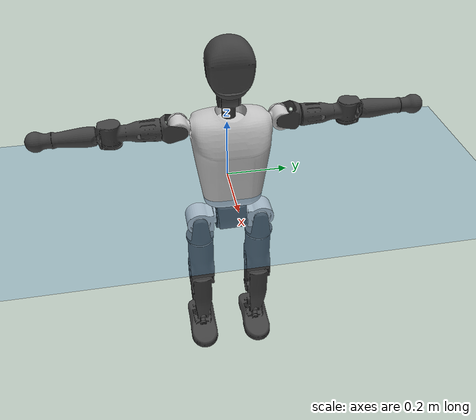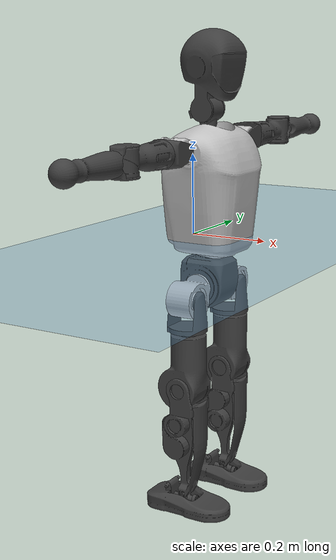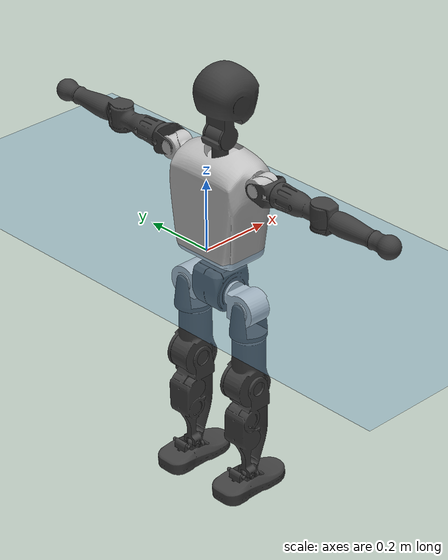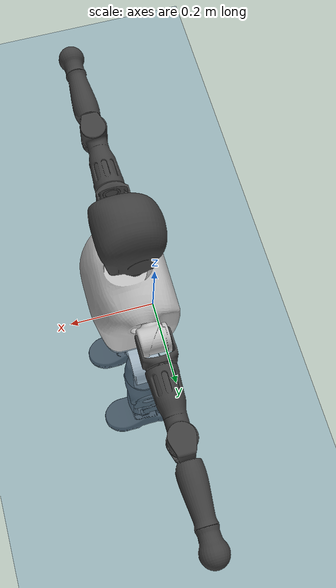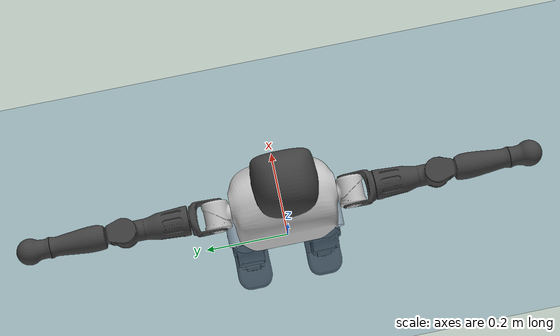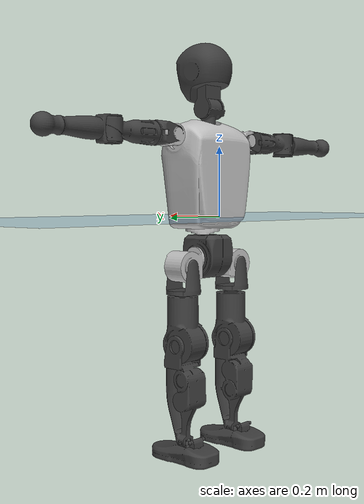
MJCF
<mujoco model="T1">
  <compiler angle="radian" assetdir="assets" balanceinertia="true" inertiafromgeom="false"/>

  <option timestep="0.005" density="1.2" viscosity="2e-05"/>

  <size nkey="1"/>

  <visual>
    <quality shadowsize="8192"/>
    <map shadowclip="0.5"/>
  </visual>

  <default>
    <default class="/">
      <joint armature="0.01" damping="0.01" frictionloss="0.1"/>
      <geom contype="0" conaffinity="0" group="1" solref="-1000 -80"/>
      <site size="0.01 0.005 0.005" group="5"/>
      <general forcelimited="true" biastype="affine" gainprm="25" biasprm="0 -25 -0.6"/>
      <default class="t1">
        <geom rgba="0.25 0.25 0.25 1"/>
        <default class="visual">
          <geom type="mesh" group="2"/>
        </default>
        <default class="collision">
          <geom group="3"/>
        </default>
        <default class="foot">
          <geom size="0.1115 0.05 0.015" type="box" condim="6" group="4" priority="1" solimp="0.015 1 0.015"/>
        </default>
        <default class="reward_collision_sphere">
          <geom group="5" rgba="1 0 0 1"/>
        </default>
      </default>
    </default>
  </default>

  <asset>
    <texture type="skybox" colorspace="auto" name="//unnamed_texture_0" builtin="gradient" rgb1="0.95 0.95 0.95" rgb2="0.95 0.95 0.95" width="100" height="600"/>
    <texture type="2d" colorspace="auto" name="texplane" builtin="checker" rgb1="0.345 0.575 0.748" rgb2="0.345 0.575 0.748" markrgb="1 1 1" width="512" height="512"/>
    <material name="MatPlane" class="/" texture="texplane" texuniform="true" texrepeat="2 2" specular="0.9"/>
    <mesh name="Trunk" class="/" file="Trunk.stl"/>
    <mesh name="H1" class="/" file="H1.stl"/>
    <mesh name="H2" class="/" file="H2.stl"/>
    <mesh name="AL1" class="/" file="AL1.stl"/>
    <mesh name="AL2" class="/" file="AL2.stl"/>
    <mesh name="AL3" class="/" file="AL3.stl"/>
    <mesh name="left_hand_link" class="/" file="left_hand_link.stl"/>
    <mesh name="AR1" class="/" file="AR1.stl"/>
    <mesh name="AR2" class="/" file="AR2.stl"/>
    <mesh name="AR3" class="/" file="AR3.stl"/>
    <mesh name="right_hand_link" class="/" file="right_hand_link.stl"/>
    <mesh name="Waist" class="/" file="Waist.stl"/>
    <mesh name="Hip_Pitch_Left" class="/" file="Hip_Pitch_Left.stl"/>
    <mesh name="Hip_Roll_Left" class="/" file="Hip_Roll_Left.stl"/>
    <mesh name="Hip_Yaw_Left" class="/" file="Hip_Yaw_Left.stl"/>
    <mesh name="Shank_Left" class="/" file="Shank_Left.stl"/>
    <mesh name="Ankle_Cross_Left" class="/" file="Ankle_Cross_Left.stl"/>
    <mesh name="left_foot_link" class="/" file="left_foot_link.stl"/>
    <mesh name="Hip_Pitch_Right" class="/" file="Hip_Pitch_Right.stl"/>
    <mesh name="Hip_Roll_Right" class="/" file="Hip_Roll_Right.stl"/>
    <mesh name="Hip_Yaw_Right" class="/" file="Hip_Yaw_Right.stl"/>
    <mesh name="Shank_Right" class="/" file="Shank_Right.stl"/>
    <mesh name="Ankle_Cross_Right" class="/" file="Ankle_Cross_Right.stl"/>
    <mesh name="right_foot_link" class="/" file="right_foot_link.stl"/>
  </asset>

  <worldbody>
    <geom name="floor" class="/" size="100 100 0.125" type="plane" group="0" material="MatPlane"/>
    <light name="toplight_shadow" class="/" pos="0 0 5" dir="0.0990148 0.0990148 -0.990148" type="directional" ambient="0.04 0.04 0.04" diffuse="0.55 0.55 0.55" specular="0.12 0.12 0.12"/>
    <light name="toplight_fill" class="/" pos="0 0 5" dir="0.0990148 0.0990148 -0.990148" type="directional" castshadow="false" ambient="0.04 0.04 0.04" diffuse="0.3 0.3 0.3" specular="0.08 0.08 0.08"/>
    <body name="trunk" childclass="t1" pos="0.0025677 0.000110545 -0.000430685" quat="1 0.000303406 -0.000257842 0.000176766">
      <inertial pos="0.038816 -0.000634122 0.106732" quat="0.999965 0.00216091 -0.00799424 -0.000879397" mass="9.24717" diaginertia="0.0173409 0.071897 0.0656512"/>
      <joint name="//unnamed_joint_0" type="free" armature="0" damping="0" frictionloss="0"/>
      <geom name="//unnamed_geom_1" class="visual" rgba="0.76 0.76 0.76 1" mesh="Trunk"/>
      <geom name="//unnamed_geom_2" class="collision" size="0.068297 0.0910627 0.136594" pos="0.0427279 0 0.123936" type="box"/>
      <geom name="//unnamed_geom_3" class="reward_collision_sphere" size="0.104722" pos="0.0427279 0 0.10328"/>
      <geom name="//unnamed_geom_4" class="reward_collision_sphere" size="0.0136594" pos="0.0427279 0.0838908 0"/>
      <geom name="//unnamed_geom_5" class="reward_collision_sphere" size="0.0136594" pos="0.0427279 -0.0838908 0"/>
      <geom name="//unnamed_geom_6" class="reward_collision_sphere" size="0.0136594" pos="0.0427279 0.105604 0.185904"/>
      <geom name="//unnamed_geom_7" class="reward_collision_sphere" size="0.0136594" pos="0.0427279 -0.105604 0.185904"/>
      <site name="imu" pos="-0.012389 -0.00662765 0.0137102" size="0.00910627"/>
      <camera name="track" pos="0 -1.9739 0" quat="0.707107 0.707107 0 0" mode="trackcom"/>
      <camera name="ego_camera" pos="0.08688 0 0.433775" quat="-0.5 -0.5 0.5 0.5"/>
      <body name="H1" pos="0.0422932 -0.00259554 0.248776" quat="1 -6.28965e-05 2.14296e-05 1.49914e-05">
        <inertial pos="-0.00339683 -0.00220044 0.0575473" quat="0.763749 -0.0206647 -0.00782772 0.645136" mass="0.345338" diaginertia="4.39901e-05 0.000202527 0.000174234"/>
        <joint name="AAHead_yaw" pos="0 0 0" axis="0.00874331 -0.0100997 0.999911" range="-1.56612 1.58011" armature="0.0101971" damping="0.00626808" frictionloss="0.100595"/>
        <geom name="//unnamed_geom_8" class="visual" mesh="H1"/>
        <body name="H2" pos="-0.00056509 -0.000411974 0.0634817" quat="0.999999 0.00112715 0.000708285 0.000400958">
          <inertial pos="0.00416986 -0.00111051 0.101534" quat="0.988712 0.104589 -0.0760338 -0.0756919" mass="0.493015" diaginertia="0.000367745 0.00181317 0.00207381"/>
          <joint name="Head_pitch" pos="0 0 0" axis="0.000538761 -1 -0.000453914" range="-1.22528 0.352392" armature="0.0101977" damping="0.00516905" frictionloss="0.0895393"/>
          <geom name="//unnamed_geom_9" class="visual" mesh="H2"/>
          <geom name="//unnamed_geom_10" class="collision" size="0.0728501" pos="0.00712131 0 0.113608"/>
          <geom name="//unnamed_geom_11" class="reward_collision_sphere" size="0.0819564" pos="0.0142426 0 0.10328"/>
        </body>
      </body>
      <body name="AL1" pos="0.0439362 0.10791 0.228808" quat="1 7.60971e-05 0.000475814 1.90637e-05">
        <inertial pos="-0.00262374 0.0468251 -0.00276832" quat="0.504442 0.494774 -0.503997 0.496713" mass="0.419996" diaginertia="0.000264429 0.00127688 0.000351731"/>
        <joint name="Left_Shoulder_Pitch" pos="0 0 0" axis="-0.00307032 0.999924 0.0119539" stiffness="0.0140451" range="-3.27577 1.2163" armature="0.0101982" damping="0.0105734" frictionloss="0.0789487"/>
        <geom name="//unnamed_geom_12" class="visual" rgba="0.76 0.76 0.76 1" mesh="AL1"/>
        <body name="AL2" pos="-0.000324918 0.049831 0.00280757" quat="1 -0.000204304 -0.000220805 0.000597723">
          <inertial pos="0.00260582 0.0376937 0.00183744" quat="0.488035 0.511762 -0.487769 0.511863" mass="0.120327" diaginertia="7.84421e-05 0.00034268 0.000207727"/>
          <joint name="Left_Shoulder_Roll" pos="0 0 0" axis="-0.999996 0.00200924 0.00174651" range="-1.52083 1.68402" armature="0.00898896" damping="0.0172835" frictionloss="0.0957891"/>
          <geom name="//unnamed_geom_13" class="visual" mesh="AL2"/>
          <body name="AL3" pos="0.00293375 0.059904 -0.000864579" quat="0.999999 0.000616226 -0.00122266 -0.000138587">
            <inertial pos="-0.000595096 0.0836253 0.00272296" quat="0.710344 0.703738 -0.0127504 0.00136703" mass="0.779234" diaginertia="0.00243762 0.0119283 0.000729379"/>
            <joint name="Left_Elbow_Pitch" pos="0 0 0" axis="-0.00590413 -0.999982 -0.00137606" range="-2.25442 2.32357" armature="0.0077968" damping="0" frictionloss="0.089694"/>
            <geom name="//unnamed_geom_14" class="visual" mesh="AL3"/>
            <geom name="//unnamed_geom_15" class="collision" size="0.0273188 0.068297" pos="0 0.0493475 0" quat="0.707105 0.707108 0 0" type="cylinder"/>
            <geom name="//unnamed_geom_16" class="reward_collision_sphere" size="0.0327826"/>
            <body name="left_hand_link" pos="0.00192921 0.145696 0.000794484" quat="0.999999 -0.00011373 -0.000971937 0.000995483">
              <inertial pos="0.00183415 0.105484 0.0015362" quat="0.707126 0.707076 -0.00342206 -0.00218018" mass="0.242207" diaginertia="0.00151875 0.00770146 0.000247528"/>
              <joint name="Left_Elbow_Yaw" pos="0 0 0" axis="-0.00825016 -0.00230366 0.999963" stiffness="0.00170016" range="-2.4023 -0.0475439" armature="0.0104492" damping="0.0262491" frictionloss="0.103783"/>
              <geom name="//unnamed_geom_17" class="visual" mesh="left_hand_link"/>
              <geom name="//unnamed_geom_18" class="collision" size="0.0273188 0.0796798" pos="0 0.128304 0" quat="0.707105 0.707108 0 0" type="cylinder"/>
              <geom name="//unnamed_geom_19" class="reward_collision_sphere" size="0.0455313"/>
              <geom name="//unnamed_geom_20" class="reward_collision_sphere" size="0.0318719" pos="0 0.108565 0"/>
              <geom name="//unnamed_geom_21" class="reward_collision_sphere" size="0.0318719" pos="0 0.212194 0"/>
            </body>
          </body>
        </body>
      </body>
      <body name="AR1" pos="0.0407911 -0.10685 0.225239" quat="0.999999 0.000531915 0.00099791 0.000897168">
        <inertial pos="0.000815402 -0.0444164 -0.000121335" quat="0.504936 0.496031 -0.5038 0.495155" mass="0.405166" diaginertia="0.000248659 0.00120701 0.000345052"/>
        <joint name="Right_Shoulder_Pitch" pos="0 0 0" axis="0.00478204 -0.999988 -0.00134896" stiffness="0.0150081" range="-1.23566 3.31529" armature="0.0101859" damping="0" frictionloss="0.0808033"/>
        <geom name="//unnamed_geom_22" class="visual" rgba="0.76 0.76 0.76 1" mesh="AR1"/>
        <body name="AR2" pos="0.000273825 -0.0437095 -0.00274132" quat="1 -0.000535941 -0.000277219 -8.99596e-05">
          <inertial pos="0.000361064 -0.0346832 -0.00230245" quat="0.509214 0.48844 -0.51045 0.491496" mass="0.125536" diaginertia="7.57168e-05 0.00032417 0.00021764"/>
          <joint name="Right_Shoulder_Roll" pos="0 0 0" axis="-0.999779 0.0181477 -0.0106149" range="-1.69676 1.59179" armature="0.0097336" damping="0.0201374" frictionloss="0.0920836"/>
          <geom name="//unnamed_geom_23" class="visual" mesh="AR2"/>
          <body name="AR3" pos="0.000988999 -0.0575003 0.000409082" quat="1 0.00013482 -0.000136042 0.000186938">
            <inertial pos="-0.00283264 -0.083594 -0.00022572" quat="0.700653 0.7135 0.00113245 -0.0012439" mass="0.770586" diaginertia="0.00238619 0.0120481 0.000752925"/>
            <joint name="Right_Elbow_Pitch" pos="0 0 0" axis="-0.00877889 0.999957 -0.00291064" range="-2.26797 2.2166" armature="0.00897548" damping="0.00868364" frictionloss="0.0795583"/>
            <geom name="//unnamed_geom_24" class="visual" mesh="AR3"/>
            <geom name="//unnamed_geom_25" class="collision" size="0.0273188 0.068297" pos="0 -0.0493475 0" quat="0.707105 0.707108 0 0" type="cylinder"/>
            <geom name="//unnamed_geom_26" class="reward_collision_sphere" size="0.0327826"/>
            <body name="right_hand_link" pos="0.00136807 -0.14274 -0.000877493" quat="1 -3.13303e-05 1.23068e-05 3.78159e-06">
              <inertial pos="-0.000433045 -0.107197 0.00349474" quat="0.706337 0.707876 0.000178305 7.81045e-05" mass="0.248816" diaginertia="0.00150319 0.00745587 0.00025112"/>
              <joint name="Right_Elbow_Yaw" pos="0 0 0" axis="0.00161344 0.000411738 0.999999" stiffness="0.0106882" range="0.0468627 2.42698" armature="0.00909207" damping="0" frictionloss="0.0789823"/>
              <geom name="//unnamed_geom_27" class="visual" mesh="right_hand_link"/>
              <geom name="//unnamed_geom_28" class="collision" size="0.0273188 0.0796798" pos="0 -0.128304 0" quat="0.707105 0.707108 0 0" type="cylinder"/>
              <geom name="//unnamed_geom_29" class="reward_collision_sphere" size="0.0455313"/>
              <geom name="//unnamed_geom_30" class="reward_collision_sphere" size="0.0318719" pos="0 -0.108565 0"/>
              <geom name="//unnamed_geom_31" class="reward_collision_sphere" size="0.0318719" pos="0 -0.212194 0"/>
            </body>
          </body>
        </body>
      </body>
      <body name="Waist" pos="0.0441279 -0.00140199 -0.119009" quat="1 -7.03723e-05 -0.000446917 0.000254518">
        <inertial pos="0.00243466 -0.000557295 0.00785532" quat="0.982623 -0.00920056 -0.185365 0.00278966" mass="1.8943" diaginertia="0.0010139 0.00495407 0.00574474"/>
        <joint name="Waist" pos="0 0 0" axis="0.00529539 -0.0146952 0.999878" stiffness="0.0029554" range="-1.61646 1.52332" armature="0.00931096" damping="0.0126657" frictionloss="0.0789627"/>
        <geom name="//unnamed_geom_32" class="visual" mesh="Waist"/>
        <body name="Hip_Pitch_Left" pos="0.000214249 0.103436 -0.000705442" quat="1 -4.80713e-06 -0.000219801 2.62545e-05">
          <inertial pos="0.00148498 -0.0103058 -0.0182717" quat="0.974303 0.224098 0.0226169 -0.00141178" mass="0.776192" diaginertia="0.000323597 0.00142573 0.00153241"/>
          <joint name="Left_Hip_Pitch" pos="0 0 0" axis="-0.00798319 0.999957 0.00481325" stiffness="0.00930371" range="-1.81138 1.57131" armature="0.0101785" damping="0.0227517" frictionloss="0.0901375"/>
          <geom name="//unnamed_geom_33" class="visual" rgba="0.76 0.76 0.76 1" mesh="Hip_Pitch_Left"/>
          <body name="Hip_Roll_Left" pos="0.00263741 -0.00174772 -0.0217158" quat="0.999999 -0.000113683 0.000913694 -0.00113286">
            <inertial pos="0.00393091 -0.000226537 -0.0551488" quat="0.707028 -0.00563617 -0.00595146 0.707138" mass="0.272442" diaginertia="0.000301834 0.00137438 0.000580244"/>
            <joint name="Left_Hip_Roll" pos="0 0 0" axis="-0.999897 0.0143425 -0.000279856" stiffness="0.00102022" range="-1.51758 0.225457" armature="0.00809948" damping="0" frictionloss="0.0858127"/>
            <geom name="//unnamed_geom_34" class="visual" mesh="Hip_Roll_Left"/>
            <geom name="//unnamed_geom_35" class="reward_collision_sphere" size="0.0500845"/>
            <body name="Hip_Yaw_Left" pos="0.00270275 -0.00255028 -0.083083" quat="0.999999 -0.000414067 0.00116362 -0.000651439">
              <inertial pos="-0.00723331 -0.0005389 -0.0927723" quat="0.697333 -0.0333452 -0.0305591 0.715319" mass="1.65612" diaginertia="0.00491861 0.0240008 0.00305693"/>
              <joint name="Left_Hip_Yaw" pos="0 0 0" axis="0.00105875 -0.00458417 -0.999989" range="-0.958589 1.0632" armature="0.00906569" damping="0.00546517" frictionloss="0.103794"/>
              <geom name="//unnamed_geom_36" class="visual" mesh="Hip_Yaw_Left"/>
              <geom name="//unnamed_geom_37" class="collision" size="0.0455313 0.0728501" type="cylinder"/>
              <body name="Shank_Left" pos="-0.0104342 0.00238739 -0.13994" quat="1 -6.74504e-06 6.48939e-05 0.000107285">
                <inertial pos="-0.00657749 0.000768756 -0.128104" quat="0.996855 -0.00380791 -0.0296281 0.0734029" mass="1.26997" diaginertia="0.00637593 0.0331809 0.00225924"/>
                <joint name="Left_Knee_Pitch" pos="0 0 0" axis="0.0124509 0.999908 0.00532478" range="0.0113519 2.39682" armature="0.00784249" damping="0.0103343" frictionloss="0.102284"/>
                <geom name="//unnamed_geom_38" class="visual" mesh="Shank_Left"/>
                <geom name="//unnamed_geom_39" class="collision" size="0.0455313 0.068297" pos="0 0 -0.123936" type="cylinder"/>
                <geom name="//unnamed_geom_40" class="reward_collision_sphere" size="0.0591907"/>
                <body name="Ankle_Cross_Left" pos="-0.00203028 -0.000832909 -0.288767" quat="1 -0.000201688 9.68221e-05 -0.000408525">
                  <inertial pos="-0.00210425 -0.000454748 -0.00727814" quat="0.438659 0.552948 0.552697 0.443116" mass="0.0565836" diaginertia="5.56261e-06 2.45996e-05 1.35544e-05"/>
                  <joint name="Left_Ankle_Pitch" pos="0 0 0" axis="-0.00351176 0.999924 0.0117843" range="-0.862767 0.296959" armature="0.010194" damping="0.00731775" frictionloss="0.0839567"/>
                  <geom name="//unnamed_geom_41" class="visual" mesh="Ankle_Cross_Left"/>
                  <body name="left_foot_link" pos="0.00172548 -0.00189952 -0.0143192" quat="1 0.00020109 5.8281e-05 -1.02825e-05">
                    <inertial pos="-0.00245899 0.00259655 -0.00924671" quat="-0.0019434 0.624603 0.00028392 0.78094" mass="0.515833" diaginertia="0.000487931 0.00219568 0.00244911"/>
                    <joint name="Left_Ankle_Roll" pos="0 0 0" axis="-0.999992 -0.00347187 -0.00221016" range="-0.395471 0.405635" armature="0.00912448" damping="0.00391764" frictionloss="0.095842"/>
                    <geom name="//unnamed_geom_42" class="visual" mesh="left_foot_link"/>
                    <geom name="left_foot" class="foot" size="0.100199 0.0448902 0.0129808" pos="0.00712131 0 -0.015492"/>
                    <geom name="//unnamed_geom_44" class="reward_collision_sphere" size="0.0473526" pos="0.00712131 0 -0.015492"/>
                    <geom name="//unnamed_geom_45" class="reward_collision_sphere" size="0.0273188" pos="0.0676525 -0.0226999 -0.015492"/>
                    <geom name="//unnamed_geom_46" class="reward_collision_sphere" size="0.0273188" pos="-0.0498492 -0.0226999 -0.015492"/>
                    <site name="left_foot" class="foot" pos="0.00712131 0 -0.015492" size="0.00910627"/>
                  </body>
                </body>
              </body>
            </body>
          </body>
        </body>
        <body name="Hip_Pitch_Right" pos="-0.0015364 -0.104503 -0.00233217" quat="1 -0.000499013 -0.000138972 0.000252587">
          <inertial pos="0.00133692 0.00742251 -0.0213876" quat="0.973622 -0.227665 0.0145857 -0.00391314" mass="0.760586" diaginertia="0.000320797 0.0014144 0.00149829"/>
          <joint name="Right_Hip_Pitch" pos="0 0 0" axis="0.00559338 -0.999984 -0.000775946" range="-1.60703 1.84859" armature="0.0086915" damping="0.0218648" frictionloss="0.0795014"/>
          <geom name="//unnamed_geom_47" class="visual" rgba="0.76 0.76 0.76 1" mesh="Hip_Pitch_Right"/>
          <body name="Hip_Roll_Right" pos="0.00239877 -0.000155042 -0.0204015" quat="1 -6.79489e-05 0.000130299 -6.91345e-06">
            <inertial pos="0.000903051 -0.00330828 -0.052695" quat="0.707184 -0.00629946 -0.00501639 0.706984" mass="0.281065" diaginertia="0.000308276 0.00135086 0.000602859"/>
            <joint name="Right_Hip_Roll" pos="0 0 0" axis="-0.999919 0.0125354 -0.00238967" range="-0.19777 1.57823" armature="0.0078561" damping="0.00225533" frictionloss="0.0875935"/>
            <geom name="//unnamed_geom_48" class="visual" mesh="Hip_Roll_Right"/>
            <geom name="//unnamed_geom_49" class="reward_collision_sphere" size="0.0500845"/>
            <body name="Hip_Yaw_Right" pos="-0.000218482 0.00107614 -0.0876176" quat="1 -0.000566884 -0.000299038 -0.000700694">
              <inertial pos="-0.0026952 0.00208635 -0.0947118" quat="0.716267 -0.0222604 -0.0366398 0.696508" mass="1.64247" diaginertia="0.00476615 0.0232973 0.00303884"/>
              <joint name="Right_Hip_Yaw" pos="0 0 0" axis="-0.00481397 0.00100386 -0.999988" range="-1.01123 1.00132" armature="0.00960371" damping="0.0103501" frictionloss="0.0916515"/>
              <geom name="//unnamed_geom_50" class="visual" mesh="Hip_Yaw_Right"/>
              <geom name="//unnamed_geom_51" class="collision" size="0.0455313 0.0728501" type="cylinder"/>
              <body name="Shank_Right" pos="-0.00747912 -0.0023829 -0.135879" quat="1 -3.70594e-05 0.000101315 0.000278293">
                <inertial pos="-0.00628684 0.00123913 -0.128595" quat="0.998799 0.00289557 -0.0369404 -0.0320519" mass="1.38201" diaginertia="0.00614096 0.0312329 0.00223283"/>
                <joint name="Right_Knee_Pitch" pos="0 0 0" axis="-0.00802435 -0.999924 -0.00936627" range="-2.38372 -0.00372026" armature="0.00923297" damping="0.00925853" frictionloss="0.0839514"/>
                <geom name="//unnamed_geom_52" class="visual" mesh="Shank_Right"/>
                <geom name="//unnamed_geom_53" class="collision" size="0.0455313 0.068297" pos="0 0 -0.123936" type="cylinder"/>
                <geom name="//unnamed_geom_54" class="reward_collision_sphere" size="0.0591907"/>
                <body name="Ankle_Cross_Right" pos="-0.000568222 -0.00137971 -0.287375" quat="1 -3.5408e-06 -4.23539e-05 0.000319905">
                  <inertial pos="-0.00265601 -0.00276891 -0.0082737" quat="0.438836 0.54613 0.550955 0.453446" mass="0.0548411" diaginertia="5.2937e-06 2.25786e-05 1.2886e-05"/>
                  <joint name="Right_Ankle_Pitch" pos="0 0 0" axis="-0.0120923 -0.999927 0.000734454" range="-0.31239 0.869856" armature="0.0103304" damping="6.41276e-05" frictionloss="0.0906535"/>
                  <geom name="//unnamed_geom_55" class="visual" mesh="Ankle_Cross_Right"/>
                  <body name="right_foot_link" pos="0.00104004 -0.00134887 -0.00951762" quat="1 1.37405e-05 -1.78398e-05 1.06174e-05">
                    <inertial pos="0.000328989 0.000766277 -0.00672202" quat="-0.0040628 0.613235 0.00571475 0.789869" mass="0.522203" diaginertia="0.000512035 0.00225092 0.0025832"/>
                    <joint name="Right_Ankle_Roll" pos="0 0 0" axis="-0.999996 0.00264697 -0.00100524" stiffness="0.000688616" range="-0.441317 0.38977" armature="0.00941557" damping="0.0148604" frictionloss="0.0792675"/>
                    <geom name="//unnamed_geom_56" class="visual" mesh="right_foot_link"/>
                    <geom name="right_foot" class="foot" size="0.110482 0.0463262 0.0144298" pos="0.00712131 0 -0.015492"/>
                    <geom name="//unnamed_geom_58" class="reward_collision_sphere" size="0.0364251"/>
                    <geom name="//unnamed_geom_59" class="reward_collision_sphere" size="0.0273188" pos="0.00712131 0 -0.015492"/>
                    <geom name="//unnamed_geom_60" class="reward_collision_sphere" size="0.0273188" pos="0.0676525 0.0226999 -0.015492"/>
                    <geom name="//unnamed_geom_61" class="reward_collision_sphere" size="0.0273188" pos="-0.0498492 0.0226999 -0.015492"/>
                    <site name="right_foot" class="foot" pos="0.00712131 0 -0.015492" size="0.00910627"/>
                  </body>
                </body>
              </body>
            </body>
          </body>
        </body>
      </body>
    </body>
  </worldbody>

  <contact>
    <pair class="/" geom1="floor" geom2="left_foot" name="//unnamed_contact_0"/>
    <pair class="/" geom1="floor" geom2="right_foot" name="//unnamed_contact_1"/>
  </contact>

  <actuator>
    <general name="AAHead_yaw" class="/" joint="AAHead_yaw" forcerange="-7.01428 7.01428" gainprm="23.6109" biasprm="0 -23.6109 -0.498462"/>
    <general name="Head_pitch" class="/" joint="Head_pitch" forcerange="-6.19525 6.19525" gainprm="23.6109" biasprm="0 -23.6109 -0.498462"/>
    <general name="Left_Shoulder_Pitch" class="/" joint="Left_Shoulder_Pitch" forcerange="-15.7702 15.7702" gainprm="23.6109" biasprm="0 -23.6109 -0.498462"/>
    <general name="Left_Shoulder_Roll" class="/" joint="Left_Shoulder_Roll" forcerange="-16.5449 16.5449" gainprm="23.6109" biasprm="0 -23.6109 -0.498462"/>
    <general name="Left_Elbow_Pitch" class="/" joint="Left_Elbow_Pitch" forcerange="-18.1135 18.1135" gainprm="23.6109" biasprm="0 -23.6109 -0.498462"/>
    <general name="Left_Elbow_Yaw" class="/" joint="Left_Elbow_Yaw" forcerange="-17.862 17.862" gainprm="23.6109" biasprm="0 -23.6109 -0.498462"/>
    <general name="Right_Shoulder_Pitch" class="/" joint="Right_Shoulder_Pitch" forcerange="-15.6351 15.6351" gainprm="23.6109" biasprm="0 -23.6109 -0.498462"/>
    <general name="Right_Shoulder_Roll" class="/" joint="Right_Shoulder_Roll" forcerange="-16.5926 16.5926" gainprm="23.6109" biasprm="0 -23.6109 -0.498462"/>
    <general name="Right_Elbow_Pitch" class="/" joint="Right_Elbow_Pitch" forcerange="-16.1982 16.1982" gainprm="23.6109" biasprm="0 -23.6109 -0.498462"/>
    <general name="Right_Elbow_Yaw" class="/" joint="Right_Elbow_Yaw" forcerange="-16.1197 16.1197" gainprm="23.6109" biasprm="0 -23.6109 -0.498462"/>
    <general name="Waist" class="/" joint="Waist" forcerange="-28.3692 28.3692" gainprm="23.6109" biasprm="0 -23.6109 -0.498462"/>
    <general name="Left_Hip_Pitch" class="/" joint="Left_Hip_Pitch" forcerange="-41.1357 41.1357" gainprm="23.6109" biasprm="0 -23.6109 -0.498462"/>
    <general name="Left_Hip_Roll" class="/" joint="Left_Hip_Roll" forcerange="-26.4023 26.4023" gainprm="23.6109" biasprm="0 -23.6109 -0.498462"/>
    <general name="Left_Hip_Yaw" class="/" joint="Left_Hip_Yaw" forcerange="-24.5303 24.5303" gainprm="23.6109" biasprm="0 -23.6109 -0.498462"/>
    <general name="Left_Knee_Pitch" class="/" joint="Left_Knee_Pitch" forcerange="-57.5872 57.5872" gainprm="23.6109" biasprm="0 -23.6109 -0.498462"/>
    <general name="Left_Ankle_Pitch" class="/" joint="Left_Ankle_Pitch" forcerange="-16.8877 16.8877" gainprm="23.6109" biasprm="0 -23.6109 -0.498462"/>
    <general name="Left_Ankle_Roll" class="/" joint="Left_Ankle_Roll" forcerange="-13.7728 13.7728" gainprm="23.6109" biasprm="0 -23.6109 -0.498462"/>
    <general name="Right_Hip_Pitch" class="/" joint="Right_Hip_Pitch" forcerange="-42.107 42.107" gainprm="23.6109" biasprm="0 -23.6109 -0.498462"/>
    <general name="Right_Hip_Roll" class="/" joint="Right_Hip_Roll" forcerange="-28.2702 28.2702" gainprm="23.6109" biasprm="0 -23.6109 -0.498462"/>
    <general name="Right_Hip_Yaw" class="/" joint="Right_Hip_Yaw" forcerange="-26.7912 26.7912" gainprm="23.6109" biasprm="0 -23.6109 -0.498462"/>
    <general name="Right_Knee_Pitch" class="/" joint="Right_Knee_Pitch" forcerange="-48.9615 48.9615" gainprm="23.6109" biasprm="0 -23.6109 -0.498462"/>
    <general name="Right_Ankle_Pitch" class="/" joint="Right_Ankle_Pitch" forcerange="-16.3734 16.3734" gainprm="23.6109" biasprm="0 -23.6109 -0.498462"/>
    <general name="Right_Ankle_Roll" class="/" joint="Right_Ankle_Roll" forcerange="-13.9074 13.9074" gainprm="23.6109" biasprm="0 -23.6109 -0.498462"/>
  </actuator>

  <sensor>
    <gyro site="imu" name="imu_angular_velocity"/>
    <velocimeter site="imu" name="imu_linear_velocity"/>
    <framelinvel objtype="site" objname="left_foot" name="left_foot_global_linear_velocity"/>
    <framelinvel objtype="site" objname="right_foot" name="right_foot_global_linear_velocity"/>
  </sensor>

  <keyframe>
    <key name="home" qpos="0 0 0.6385 1 0 0 0 0 0 0 1.4 0 -0.4 0 -1.4 0 0.4 0 -0.4 0 0 0.8 -0.4 0 0.4 0 0 -0.8 0.4 0"/>
  </keyframe>
</mujoco>
